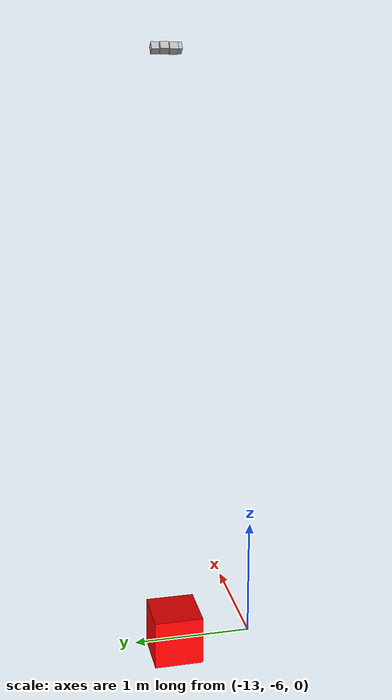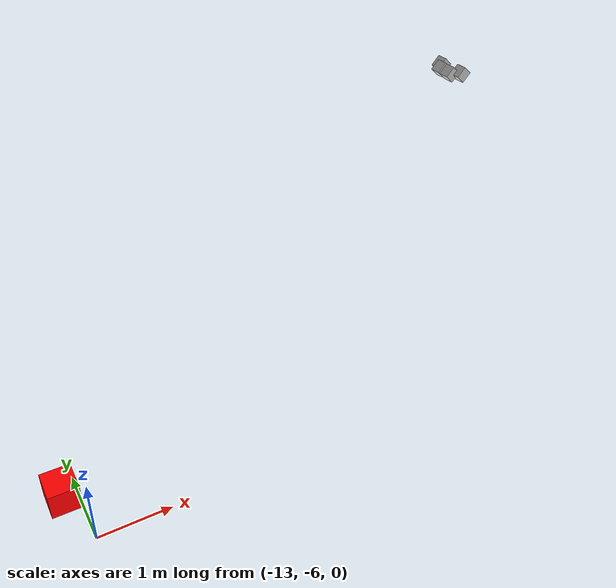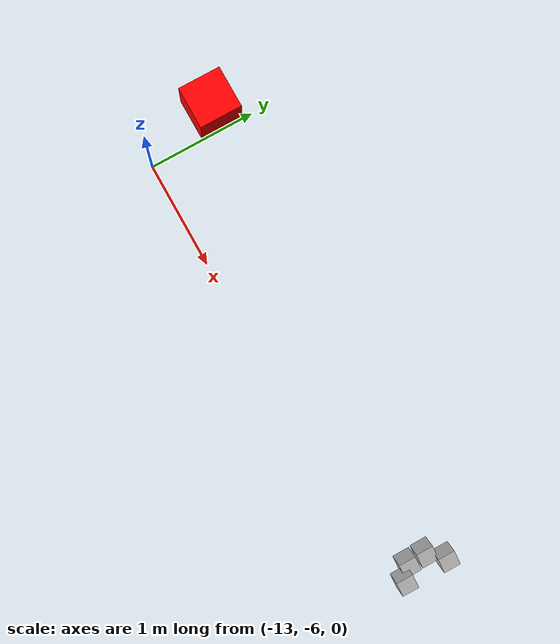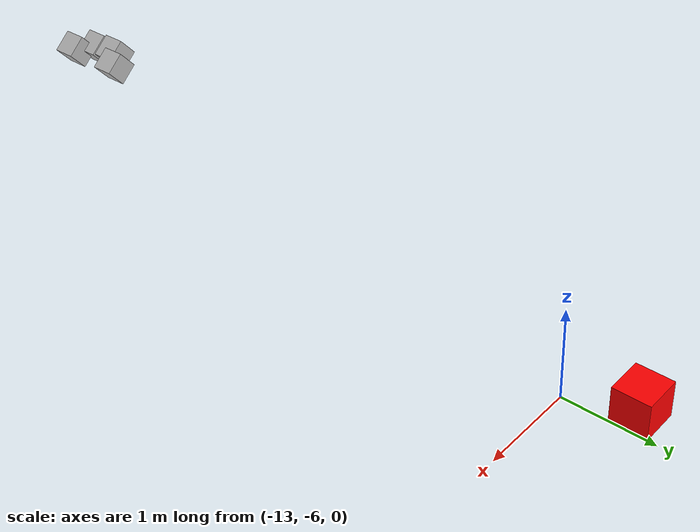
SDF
<sdf version="1.10">
 <world name="Edifice">
  <scene>
   <grid>false</grid>
   <ambient>0.400000006 0.400000006 0.400000006 1</ambient>
   <background>0.699999988 0.699999988 0.699999988 1</background>
   <shadows>true</shadows>
  </scene>
  <physics name="1ms" type="ignored">
   <max_step_size>0.002</max_step_size>
   <real_time_factor>1</real_time_factor>
   <real_time_update_rate>1000</real_time_update_rate>
  </physics>
  <plugin name="ignition::gazebo::systems::Physics" filename="ignition-gazebo-physics-system"/>
  <plugin name="ignition::gazebo::systems::Sensors" filename="ignition-gazebo-sensors-system">
   <render_engine>ogre2</render_engine>
  </plugin>
  <plugin name="ignition::gazebo::systems::UserCommands" filename="ignition-gazebo-user-commands-system"/>
  <plugin name="ignition::gazebo::systems::SceneBroadcaster" filename="ignition-gazebo-scene-broadcaster-system"/>
  <plugin name="ignition::gazebo::systems::TriggeredPublisher" filename="libignition-gazebo-triggered-publisher-system.so">
   <input type="ignition.msgs.Int32" topic="/keyboard/keypress"><match field="data">87</match></input>
   <output type="ignition.msgs.Twist" topic="/model/Mecanum_lift/cmd_vel">linear: {x: 1.0, y: 0.0}, angular: {z: 0.0}</output>
  </plugin>
  <plugin name="ignition::gazebo::systems::TriggeredPublisher" filename="libignition-gazebo-triggered-publisher-system.so">
   <input type="ignition.msgs.Int32" topic="/keyboard/keypress"><match field="data">88</match></input>
   <output type="ignition.msgs.Twist" topic="/model/Mecanum_lift/cmd_vel">linear: {x: -1.0, y: 0.0}, angular: {z: 0.0}</output>
  </plugin>
  <plugin name="ignition::gazebo::systems::TriggeredPublisher" filename="libignition-gazebo-triggered-publisher-system.so">
   <input type="ignition.msgs.Int32" topic="/keyboard/keypress"><match field="data">68</match></input>
   <output type="ignition.msgs.Twist" topic="/model/Mecanum_lift/cmd_vel">linear: {x: 0.0, y: -1.0}, angular: {z: 0.0}</output>
  </plugin>
  <plugin name="ignition::gazebo::systems::TriggeredPublisher" filename="libignition-gazebo-triggered-publisher-system.so">
   <input type="ignition.msgs.Int32" topic="/keyboard/keypress"><match field="data">65</match></input>
   <output type="ignition.msgs.Twist" topic="/model/Mecanum_lift/cmd_vel">linear: {x: 0.0, y: 1.0}, angular: {z: 0.0}</output>
  </plugin>
  <plugin name="ignition::gazebo::systems::TriggeredPublisher" filename="libignition-gazebo-triggered-publisher-system.so">
   <input type="ignition.msgs.Int32" topic="/keyboard/keypress"><match field="data">69</match></input>
   <output type="ignition.msgs.Twist" topic="/model/Mecanum_lift/cmd_vel">linear: {x: 0.0, y: 0.0}, angular: {z: -1.0}</output>
  </plugin>
  <plugin name="ignition::gazebo::systems::TriggeredPublisher" filename="libignition-gazebo-triggered-publisher-system.so">
   <input type="ignition.msgs.Int32" topic="/keyboard/keypress"><match field="data">81</match></input>
   <output type="ignition.msgs.Twist" topic="/model/Mecanum_lift/cmd_vel">linear: {x: 0.0, y: 0.0}, angular: {z: 1.0}</output>
  </plugin>
  <plugin name="ignition::gazebo::systems::TriggeredPublisher" filename="libignition-gazebo-triggered-publisher-system.so">
   <input type="ignition.msgs.Int32" topic="/keyboard/keypress"><match field="data">83</match></input>
   <output type="ignition.msgs.Twist" topic="/model/Mecanum_lift/cmd_vel">linear: {x: 0.0, y: 0.0}, angular: {z: 0.0}</output>
  </plugin>
  <gravity>0 0 -9.8000000000000007</gravity>
  <magnetic_field>5.5644999999999998e-06 2.2875799999999999e-05 -4.2388400000000002e-05</magnetic_field>
  <atmosphere type="adiabatic"/>
  <model name="fog_generator">
   <pose>-13.199999999999999 -6 0.14999999999999999 0 0 0</pose>
   <static>true</static>
   <link name="link">
    <inertial>
     <mass>1</mass>
     <inertia><ixx>1</ixx><ixy>0</ixy><ixz>0</ixz><iyy>1</iyy><iyz>0</iyz><izz>1</izz></inertia>
    </inertial>
   </link>
   <plugin name="ignition::gazebo::systems::ParticleEmitter" filename="ignition-gazebo-particle-emitter-system">
    <emitter_name>fog_generator</emitter_name>
    <allow_renaming>true</allow_renaming>
    <emitting>false</emitting>
    <type>box</type>
    <size>10 10 0</size>
    <particle_size>1 1 1</particle_size>
    <lifetime>25</lifetime>
    <min_velocity>0.1</min_velocity>
    <max_velocity>0.2</max_velocity>
    <scale_rate>0.5</scale_rate>
    <rate>5</rate>
    <material>
     <diffuse>0.7 0.7 0.7</diffuse>
     <specular>1.0 1.0 1.0</specular>
     <pbr><metal><albedo_map>materials/textures/fog.png</albedo_map></metal></pbr>
    </material>
    <color_range_image>materials/textures/fogcolors.png</color_range_image>
   </plugin>
  </model>
  <model name="thermal_camera_16_bit">
   <pose>-9 -6.21 5 1.5174400962174918e-16 0.90000000000000058 -3.1399999999999997</pose>
   <link name="link">
    <collision name="collision">
     <geometry><box><size>0.10000000000000001 0.10000000000000001 0.10000000000000001</size></box></geometry>
    </collision>
    <visual name="visual">
     <geometry><box><size>0.10000000000000001 0.10000000000000001 0.10000000000000001</size></box></geometry>
    </visual>
    <sensor name="thermal_camera" type="thermal_camera">
     <topic>thermal_camera_16_bit</topic>
     <update_rate>30</update_rate>
     <enable_metrics>false</enable_metrics>
     <camera name="__default__">
      <horizontal_fov>1.0469999999999999</horizontal_fov>
      <image><width>320</width><height>240</height><format>L_INT16</format><anti_aliasing>4</anti_aliasing></image>
      <camera_info_topic>__default__</camera_info_topic>
      <triggered>false</triggered>
      <clip><near>0.10000000000000001</near><far>100</far></clip>
      <save enabled="false"><path>__default__</path></save>
      <visibility_mask>4294967295</visibility_mask>
      <noise><type>none</type><mean>0</mean><stddev>0</stddev></noise>
      <distortion><k1>0</k1><k2>0</k2><k3>0</k3><p1>0</p1><p2>0</p2><center>0.5 0.5</center></distortion>
      <lens>
       <type>stereographic</type>
       <scale_to_hfov>true</scale_to_hfov>
       <cutoff_angle>1.5707963267948966</cutoff_angle>
       <env_texture_size>256</env_texture_size>
      </lens>
     </camera>
    </sensor>
    <inertial>
     <mass>1</mass>
     <inertia><ixx>1</ixx><ixy>0</ixy><ixz>0</ixz><iyy>1</iyy><iyz>0</iyz><izz>1</izz></inertia>
    </inertial>
   </link>
   <static>true</static>
  </model>
  <model name="thermal_camera_8_bit">
   <pose>-9 -5.9500000000000002 5 1.5174400962174918e-16 0.90000000000000058 -3.1399999999999997</pose>
   <link name="link">
    <collision name="collision">
     <geometry><box><size>0.10000000000000001 0.10000000000000001 0.10000000000000001</size></box></geometry>
    </collision>
    <visual name="visual">
     <geometry><box><size>0.10000000000000001 0.10000000000000001 0.10000000000000001</size></box></geometry>
    </visual>
    <sensor name="thermal_camera" type="thermal_camera">
     <topic>thermal_camera_8_bit</topic>
     <update_rate>30</update_rate>
     <enable_metrics>false</enable_metrics>
     <camera name="__default__">
      <horizontal_fov>1.0469999999999999</horizontal_fov>
      <image><width>320</width><height>240</height><format>L_INT8</format><anti_aliasing>4</anti_aliasing></image>
      <camera_info_topic>__default__</camera_info_topic>
      <triggered>false</triggered>
      <clip><near>0.10000000000000001</near><far>100</far></clip>
      <save enabled="false"><path>__default__</path></save>
      <visibility_mask>4294967295</visibility_mask>
      <noise><type>none</type><mean>0</mean><stddev>0</stddev></noise>
      <distortion><k1>0</k1><k2>0</k2><k3>0</k3><p1>0</p1><p2>0</p2><center>0.5 0.5</center></distortion>
      <lens>
       <type>stereographic</type>
       <scale_to_hfov>true</scale_to_hfov>
       <cutoff_angle>1.5707963267948966</cutoff_angle>
       <env_texture_size>256</env_texture_size>
      </lens>
     </camera>
    </sensor>
    <inertial>
     <mass>1</mass>
     <inertia><ixx>1</ixx><ixy>0</ixy><ixz>0</ixz><iyy>1</iyy><iyz>0</iyz><izz>1</izz></inertia>
    </inertial>
   </link>
   <static>true</static>
  </model>
  <model name="camera">
   <pose>-9.0749999999999993 -6.1500000000000004 4.9950000000000001 1.5174400962174918e-16 0.90000000000000058 -3.1399999999999997</pose>
   <link name="link">
    <inertial>
     <mass>0.10000000000000001</mass>
     <inertia>
      <ixx>0.00016666700000000001</ixx>
      <iyy>0.00016666700000000001</iyy>
      <izz>0.00016666700000000001</izz>
      <ixy>0</ixy>
      <ixz>0</ixz>
      <iyz>0</iyz>
     </inertia>
    </inertial>
    <collision name="collision">
     <geometry><box><size>0.10000000000000001 0.10000000000000001 0.10000000000000001</size></box></geometry>
    </collision>
    <visual name="visual">
     <geometry><box><size>0.10000000000000001 0.10000000000000001 0.10000000000000001</size></box></geometry>
    </visual>
    <sensor name="camera" type="camera">
     <topic>__default__</topic>
     <update_rate>30</update_rate>
     <enable_metrics>false</enable_metrics>
     <camera name="__default__">
      <horizontal_fov>1.0469999999999999</horizontal_fov>
      <image><width>320</width><height>240</height><format>RGB_INT8</format><anti_aliasing>4</anti_aliasing></image>
      <camera_info_topic>__default__</camera_info_topic>
      <triggered>false</triggered>
      <clip><near>0.10000000000000001</near><far>100</far></clip>
      <save enabled="false"><path>__default__</path></save>
      <visibility_mask>4294967295</visibility_mask>
      <noise><type>none</type><mean>0</mean><stddev>0</stddev></noise>
      <distortion><k1>0</k1><k2>0</k2><k3>0</k3><p1>0</p1><p2>0</p2><center>0.5 0.5</center></distortion>
      <lens>
       <type>stereographic</type>
       <scale_to_hfov>true</scale_to_hfov>
       <cutoff_angle>1.5707963267948966</cutoff_angle>
       <env_texture_size>256</env_texture_size>
      </lens>
     </camera>
    </sensor>
   </link>
   <static>true</static>
  </model>
  <model name="depth_camera">
   <link name="link">
    <pose>0 0 0.050000000000000003 0 0 0</pose>
    <inertial>
     <mass>0.10000000000000001</mass>
     <inertia>
      <ixx>0.00016666700000000001</ixx>
      <iyy>0.00016666700000000001</iyy>
      <izz>0.00016666700000000001</izz>
      <ixy>0</ixy>
      <ixz>0</ixz>
      <iyz>0</iyz>
     </inertia>
    </inertial>
    <collision name="collision">
     <geometry><box><size>0.10000000000000001 0.10000000000000001 0.10000000000000001</size></box></geometry>
    </collision>
    <visual name="visual">
     <geometry><box><size>0.10000000000000001 0.10000000000000001 0.10000000000000001</size></box></geometry>
    </visual>
    <sensor name="camera" type="depth_camera">
     <topic>__default__</topic>
     <update_rate>30</update_rate>
     <enable_metrics>false</enable_metrics>
     <camera name="__default__">
      <horizontal_fov>1.0469999999999999</horizontal_fov>
      <image><width>320</width><height>240</height><format>RGB_INT8</format><anti_aliasing>4</anti_aliasing></image>
      <camera_info_topic>__default__</camera_info_topic>
      <triggered>false</triggered>
      <clip><near>0.10000000000000001</near><far>100</far></clip>
      <save enabled="false"><path>__default__</path></save>
      <visibility_mask>4294967295</visibility_mask>
      <noise><type>none</type><mean>0</mean><stddev>0</stddev></noise>
      <distortion><k1>0</k1><k2>0</k2><k3>0</k3><p1>0</p1><p2>0</p2><center>0.5 0.5</center></distortion>
      <lens>
       <type>stereographic</type>
       <scale_to_hfov>true</scale_to_hfov>
       <cutoff_angle>1.5707963267948966</cutoff_angle>
       <env_texture_size>256</env_texture_size>
      </lens>
     </camera>
    </sensor>
   </link>
   <pose>-9.0399999999999991 -6.04 4.9699999999999998 1.5174400962174918e-16 0.90000000000000058 -3.1399999999999997</pose>
   <static>true</static>
  </model>
  <model name="uniform_temp_box">
   <pose>-13.199999999999999 -5.2999999999999998 0.19999989516484651 3.8274668033664375e-19 1.7182739846419778e-18 -8.6102966869277933e-21</pose>
   <link name="box_link">
    <inertial>
     <inertia><ixx>1</ixx><ixy>0</ixy><ixz>0</ixz><iyy>1</iyy><iyz>0</iyz><izz>1</izz></inertia>
     <mass>1</mass>
    </inertial>
    <collision name="box_collision">
     <geometry><box><size>0.40000000000000002 0.40000000000000002 0.40000000000000002</size></box></geometry>
    </collision>
    <visual name="box_visual">
     <geometry><box><size>0.40000000000000002 0.40000000000000002 0.40000000000000002</size></box></geometry>
     <material><ambient>1 0 0 1</ambient><diffuse>1 0 0 1</diffuse><specular>1 0 0 1</specular></material>
     <plugin name="ignition::gazebo::systems::Thermal" filename="ignition-gazebo-thermal-system">
      <temperature>295.0</temperature>
     </plugin>
    </visual>
   </link>
   <static>false</static>
  </model>
 </world>
</sdf>
